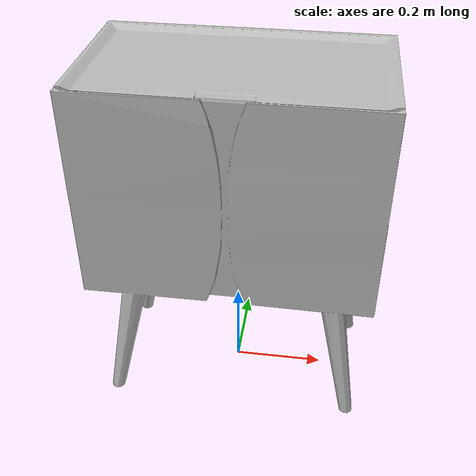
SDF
<sdf version="1.6">
	<model name="Cabinets_O360d998c89e3_lod0">
		<link name="main_link">
			<visual name="visual_RootNode">
				<geometry>
					<mesh>
						<uri>model://Cabinets_O360d998c89e3_lod0/meshes/visual_RootNode.dae</uri>
					</mesh>
				</geometry>
			</visual>
			<collision name="collision_RootNode_lod0_0">
				<geometry>
					<mesh>
						<uri>model://Cabinets_O360d998c89e3_lod0/meshes/collision_RootNode_lod0_0.dae</uri>
					</mesh>
				</geometry>
			</collision>
		</link>
	</model>
</sdf>
